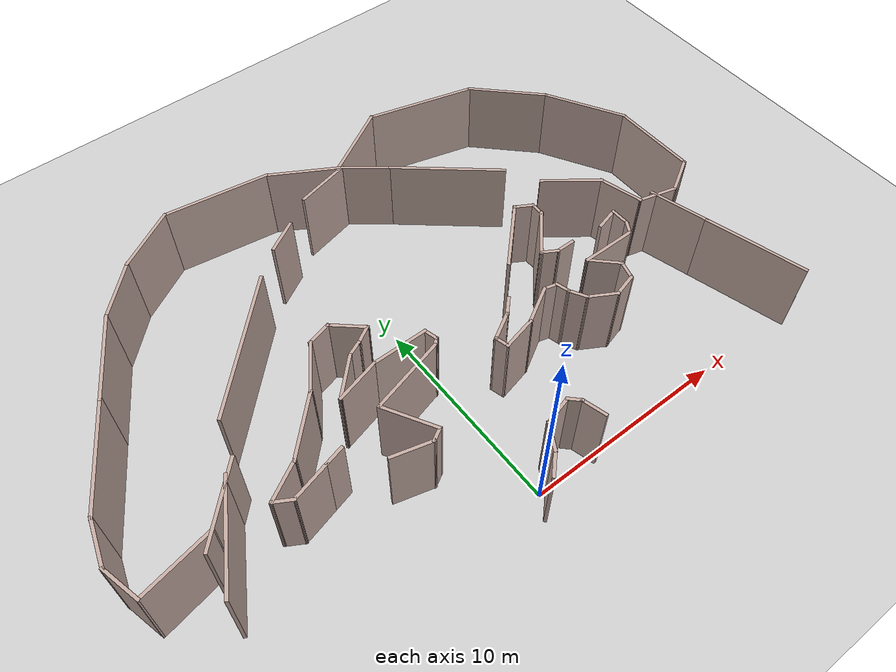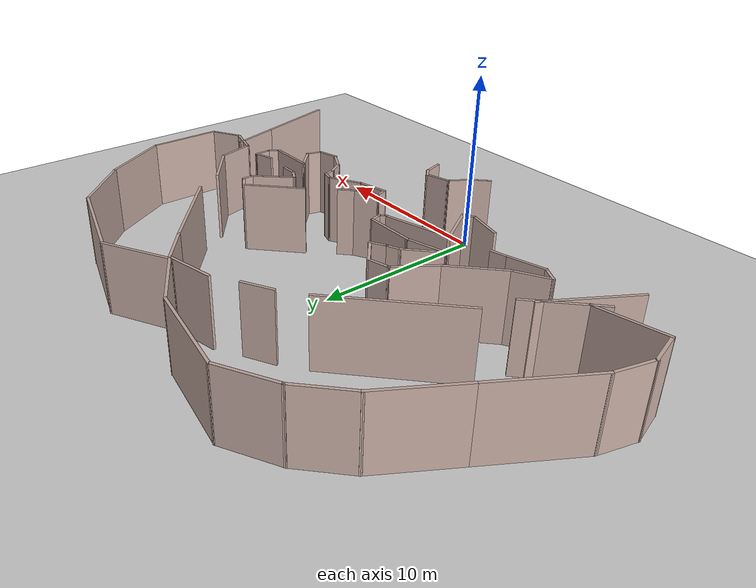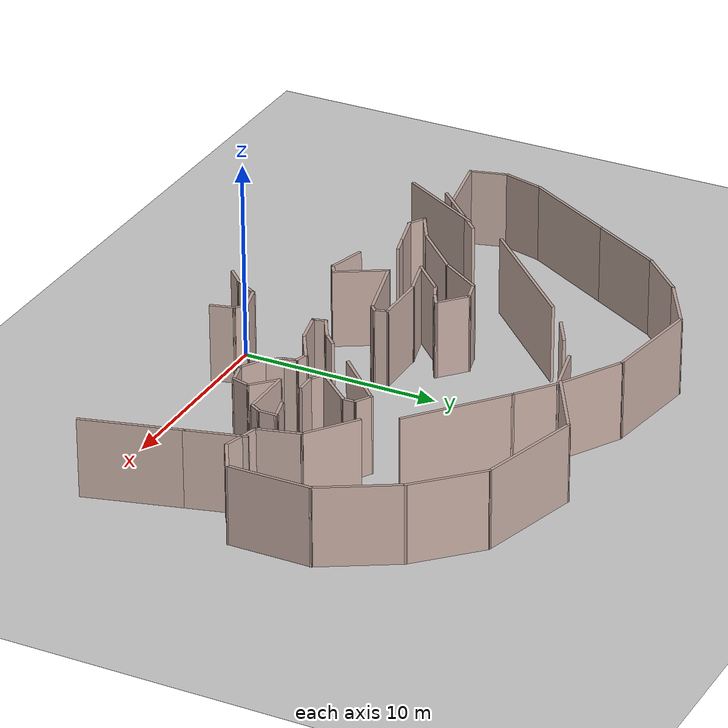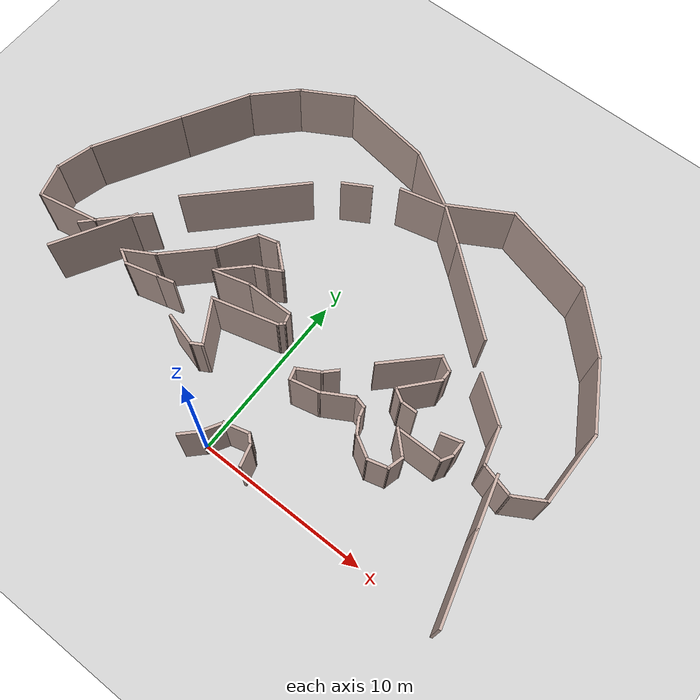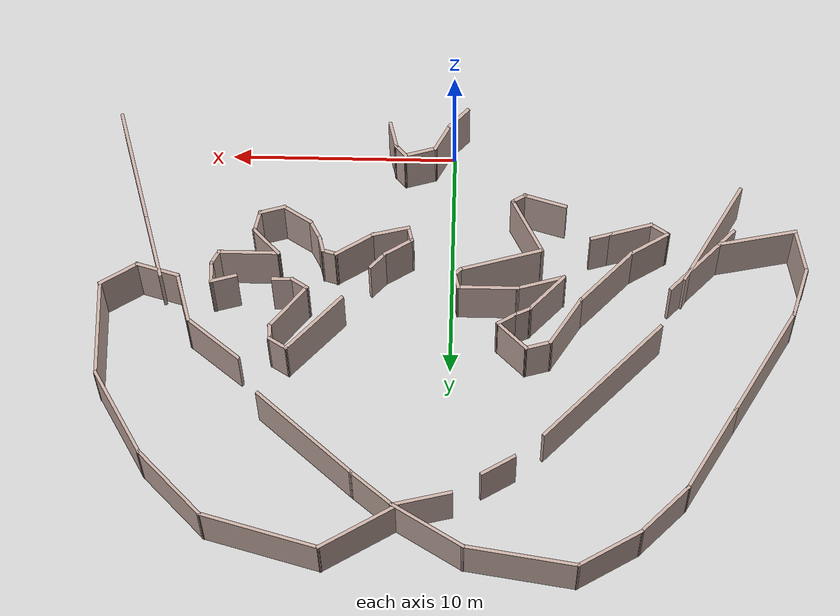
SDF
<sdf version="1.7">
 <world name="default">
  <model name="ground_plane">
   <static>1</static>
   <link name="link">
    <collision name="collision">
     <geometry><plane><normal>0 0 1</normal><size>100 100</size></plane></geometry>
     <surface><friction><ode><mu>100</mu><mu2>50</mu2></ode></friction></surface>
    </collision>
    <visual name="visual">
     <cast_shadows>0</cast_shadows>
     <geometry><plane><normal>0 0 1</normal><size>100 100</size></plane></geometry>
     <material>
      <script><uri>file://media/materials/scripts/gazebo.material</uri><name>Gazebo/Grey</name></script>
     </material>
    </visual>
   </link>
  </model>
  <model name="Untitled">
   <pose>-0.071284 -0.040454 0 0 -0 0</pose>
   <link name="Wall_104">
    <collision name="Wall_104_Collision">
     <geometry><box><size>5 0.15 4.0</size></box></geometry>
     <pose>0 0 2.0 0 -0 0</pose>
    </collision>
    <visual name="Wall_104_Visual">
     <pose>0 0 2.0 0 -0 0</pose>
     <geometry><box><size>5 0.15 4.0</size></box></geometry>
     <material>
      <script><uri>file://media/materials/scripts/gazebo.material</uri><name>Gazebo/Grey</name></script>
      <ambient>0.760784 0.662745 0.627451 1</ambient>
     </material>
     <meta><layer>0</layer></meta>
    </visual>
    <pose>14.2407 2.00719 0 0 -0 1.8326</pose>
   </link>
   <link name="Wall_105">
    <collision name="Wall_105_Collision">
     <geometry><box><size>3 0.15 4.0</size></box></geometry>
     <pose>0 0 2.0 0 -0 0</pose>
    </collision>
    <visual name="Wall_105_Visual">
     <pose>0 0 2.0 0 -0 0</pose>
     <geometry><box><size>3 0.15 4.0</size></box></geometry>
     <material>
      <script><uri>file://media/materials/scripts/gazebo.material</uri><name>Gazebo/Grey</name></script>
      <ambient>0.760784 0.662745 0.627451 1</ambient>
     </material>
     <meta><layer>0</layer></meta>
    </visual>
    <pose>13.2443 5.726 0 0 -0 1.8326</pose>
   </link>
   <link name="Wall_107">
    <collision name="Wall_107_Collision">
     <geometry><box><size>2.52892 0.15 4.0</size></box></geometry>
     <pose>0 0 2.0 0 -0 0</pose>
    </collision>
    <visual name="Wall_107_Visual">
     <pose>0 0 2.0 0 -0 0</pose>
     <geometry><box><size>2.52892 0.15 4.0</size></box></geometry>
     <material>
      <script><uri>file://media/materials/scripts/gazebo.material</uri><name>Gazebo/Grey</name></script>
      <ambient>0.760784 0.662745 0.627451 1</ambient>
     </material>
     <meta><layer>0</layer></meta>
    </visual>
    <pose>-4.96725 8.86569 0 0 -0 -2.15329</pose>
   </link>
   <link name="Wall_110">
    <collision name="Wall_110_Collision">
     <geometry><box><size>3.25 0.15 4.0</size></box></geometry>
     <pose>0 0 2.0 0 -0 0</pose>
    </collision>
    <visual name="Wall_110_Visual">
     <pose>0 0 2.0 0 -0 0</pose>
     <geometry><box><size>3.25 0.15 4.0</size></box></geometry>
     <material>
      <script><uri>file://media/materials/scripts/gazebo.material</uri><name>Gazebo/Grey</name></script>
      <ambient>0.760784 0.662745 0.627451 1</ambient>
     </material>
     <meta><layer>0</layer></meta>
    </visual>
    <pose>-6.7176 6.77637 0 0 -0 -2.35619</pose>
   </link>
   <link name="Wall_111">
    <collision name="Wall_111_Collision">
     <geometry><box><size>2 0.15 4.0</size></box></geometry>
     <pose>0 0 2.0 0 -0 0</pose>
    </collision>
    <visual name="Wall_111_Visual">
     <pose>0 0 2.0 0 -0 0</pose>
     <geometry><box><size>2 0.15 4.0</size></box></geometry>
     <material>
      <script><uri>file://media/materials/scripts/gazebo.material</uri><name>Gazebo/Grey</name></script>
      <ambient>0.760784 0.662745 0.627451 1</ambient>
     </material>
     <meta><layer>0</layer></meta>
    </visual>
    <pose>-8.61469 5.21785 0 0 -0 -2.61799</pose>
   </link>
   <link name="Wall_112">
    <collision name="Wall_112_Collision">
     <geometry><box><size>1 0.15 4.0</size></box></geometry>
     <pose>0 0 2.0 0 -0 0</pose>
    </collision>
    <visual name="Wall_112_Visual">
     <pose>0 0 2.0 0 -0 0</pose>
     <geometry><box><size>1 0.15 4.0</size></box></geometry>
     <material>
      <script><uri>file://media/materials/scripts/gazebo.material</uri><name>Gazebo/Grey</name></script>
      <ambient>0.760784 0.662745 0.627451 1</ambient>
     </material>
     <meta><layer>0</layer></meta>
    </visual>
    <pose>-9.0477 4.54285 0 0 -0 -0.523599</pose>
   </link>
   <link name="Wall_113">
    <collision name="Wall_113_Collision">
     <geometry><box><size>2 0.15 4.0</size></box></geometry>
     <pose>0 0 2.0 0 -0 0</pose>
    </collision>
    <visual name="Wall_113_Visual">
     <pose>0 0 2.0 0 -0 0</pose>
     <geometry><box><size>2 0.15 4.0</size></box></geometry>
     <material>
      <script><uri>file://media/materials/scripts/gazebo.material</uri><name>Gazebo/Grey</name></script>
      <ambient>0.760784 0.662745 0.627451 1</ambient>
     </material>
     <meta><layer>0</layer></meta>
    </visual>
    <pose>-7.78616 4.56976 0 0 -0 0.261799</pose>
   </link>
   <link name="Wall_114">
    <collision name="Wall_114_Collision">
     <geometry><box><size>1 0.15 4.0</size></box></geometry>
     <pose>0 0 2.0 0 -0 0</pose>
    </collision>
    <visual name="Wall_114_Visual">
     <pose>0 0 2.0 0 -0 0</pose>
     <geometry><box><size>1 0.15 4.0</size></box></geometry>
     <material>
      <script><uri>file://media/materials/scripts/gazebo.material</uri><name>Gazebo/Grey</name></script>
      <ambient>0.760784 0.662745 0.627451 1</ambient>
     </material>
     <meta><layer>0</layer></meta>
    </visual>
    <pose>-6.48216 4.91916 0 0 -0 0.261799</pose>
   </link>
   <link name="Wall_116">
    <collision name="Wall_116_Collision">
     <geometry><box><size>3.75 0.15 4.0</size></box></geometry>
     <pose>0 0 2.0 0 -0 0</pose>
    </collision>
    <visual name="Wall_116_Visual">
     <pose>0 0 2.0 0 -0 0</pose>
     <geometry><box><size>3.75 0.15 4.0</size></box></geometry>
     <material>
      <script><uri>file://media/materials/scripts/gazebo.material</uri><name>Gazebo/Grey</name></script>
      <ambient>0.760784 0.662745 0.627451 1</ambient>
     </material>
     <meta><layer>0</layer></meta>
    </visual>
    <pose>-2.06305 6.10326 0 0 -0 0.261799</pose>
   </link>
   <link name="Wall_117">
    <collision name="Wall_117_Collision">
     <geometry><box><size>0.5 0.15 4.0</size></box></geometry>
     <pose>0 0 2.0 0 -0 0</pose>
    </collision>
    <visual name="Wall_117_Visual">
     <pose>0 0 2.0 0 -0 0</pose>
     <geometry><box><size>0.5 0.15 4.0</size></box></geometry>
     <material>
      <script><uri>file://media/materials/scripts/gazebo.material</uri><name>Gazebo/Grey</name></script>
      <ambient>0.760784 0.662745 0.627451 1</ambient>
     </material>
     <meta><layer>0</layer></meta>
    </visual>
    <pose>-0.200637 6.69288 0 0 -0 0.785398</pose>
   </link>
   <link name="Wall_118">
    <collision name="Wall_118_Collision">
     <geometry><box><size>0.75 0.15 4.0</size></box></geometry>
     <pose>0 0 2.0 0 -0 0</pose>
    </collision>
    <visual name="Wall_118_Visual">
     <pose>0 0 2.0 0 -0 0</pose>
     <geometry><box><size>0.75 0.15 4.0</size></box></geometry>
     <material>
      <script><uri>file://media/materials/scripts/gazebo.material</uri><name>Gazebo/Grey</name></script>
      <ambient>0.760784 0.662745 0.627451 1</ambient>
     </material>
     <meta><layer>0</layer></meta>
    </visual>
    <pose>-0.154539 7.1064 0 0 -0 1.8326</pose>
   </link>
   <link name="Wall_119">
    <collision name="Wall_119_Collision">
     <geometry><box><size>2.75 0.15 4.0</size></box></geometry>
     <pose>0 0 2.0 0 -0 0</pose>
    </collision>
    <visual name="Wall_119_Visual">
     <pose>0 0 2.0 0 -0 0</pose>
     <geometry><box><size>2.75 0.15 4.0</size></box></geometry>
     <material>
      <script><uri>file://media/materials/scripts/gazebo.material</uri><name>Gazebo/Grey</name></script>
      <ambient>0.760784 0.662745 0.627451 1</ambient>
     </material>
     <meta><layer>0</layer></meta>
    </visual>
    <pose>-1.53218 7.39618 0 0 -0 3.14159</pose>
   </link>
   <link name="Wall_120">
    <collision name="Wall_120_Collision">
     <geometry><box><size>2.25 0.15 4.0</size></box></geometry>
     <pose>0 0 2.0 0 -0 0</pose>
    </collision>
    <visual name="Wall_120_Visual">
     <pose>0 0 2.0 0 -0 0</pose>
     <geometry><box><size>2.25 0.15 4.0</size></box></geometry>
     <material>
      <script><uri>file://media/materials/scripts/gazebo.material</uri><name>Gazebo/Grey</name></script>
      <ambient>0.760784 0.662745 0.627451 1</ambient>
     </material>
     <meta><layer>0</layer></meta>
    </visual>
    <pose>-3.84641 7.12442 0 0 -0 -2.87979</pose>
   </link>
   <link name="Wall_121">
    <collision name="Wall_121_Collision">
     <geometry><box><size>2.25 0.15 4.0</size></box></geometry>
     <pose>0 0 2.0 0 -0 0</pose>
    </collision>
    <visual name="Wall_121_Visual">
     <pose>0 0 2.0 0 -0 0</pose>
     <geometry><box><size>2.25 0.15 4.0</size></box></geometry>
     <material>
      <script><uri>file://media/materials/scripts/gazebo.material</uri><name>Gazebo/Grey</name></script>
      <ambient>0.760784 0.662745 0.627451 1</ambient>
     </material>
     <meta><layer>0</layer></meta>
    </visual>
    <pose>-4.11817 7.59512 0 0 -0 0.785398</pose>
   </link>
   <link name="Wall_122">
    <collision name="Wall_122_Collision">
     <geometry><box><size>0.842842 0.15 4.0</size></box></geometry>
     <pose>0 0 2.0 0 -0 0</pose>
    </collision>
    <visual name="Wall_122_Visual">
     <pose>0 0 2.0 0 -0 0</pose>
     <geometry><box><size>0.842842 0.15 4.0</size></box></geometry>
     <material>
      <script><uri>file://media/materials/scripts/gazebo.material</uri><name>Gazebo/Grey</name></script>
      <ambient>0.760784 0.662745 0.627451 1</ambient>
     </material>
     <meta><layer>0</layer></meta>
    </visual>
    <pose>-3.05895 8.47785 0 0 -0 0.416862</pose>
   </link>
   <link name="Wall_123">
    <collision name="Wall_123_Collision">
     <geometry><box><size>1 0.15 4.0</size></box></geometry>
     <pose>0 0 2.0 0 -0 0</pose>
    </collision>
    <visual name="Wall_123_Visual">
     <pose>0 0 2.0 0 -0 0</pose>
     <geometry><box><size>1 0.15 4.0</size></box></geometry>
     <material>
      <script><uri>file://media/materials/scripts/gazebo.material</uri><name>Gazebo/Grey</name></script>
      <ambient>0.760784 0.662745 0.627451 1</ambient>
     </material>
     <meta><layer>0</layer></meta>
    </visual>
    <pose>-2.37413 8.83061 0 0 -0 0.523599</pose>
   </link>
   <link name="Wall_124">
    <collision name="Wall_124_Collision">
     <geometry><box><size>1.81122 0.15 4.0</size></box></geometry>
     <pose>0 0 2.0 0 -0 0</pose>
    </collision>
    <visual name="Wall_124_Visual">
     <pose>0 0 2.0 0 -0 0</pose>
     <geometry><box><size>1.81122 0.15 4.0</size></box></geometry>
     <material>
      <script><uri>file://media/materials/scripts/gazebo.material</uri><name>Gazebo/Grey</name></script>
      <ambient>0.760784 0.662745 0.627451 1</ambient>
     </material>
     <meta><layer>0</layer></meta>
    </visual>
    <pose>-2.62824 9.59341 0 0 -0 2.41741</pose>
   </link>
   <link name="Wall_125">
    <collision name="Wall_125_Collision">
     <geometry><box><size>1.25 0.15 4.0</size></box></geometry>
     <pose>0 0 2.0 0 -0 0</pose>
    </collision>
    <visual name="Wall_125_Visual">
     <pose>0 0 2.0 0 -0 0</pose>
     <geometry><box><size>1.25 0.15 4.0</size></box></geometry>
     <material>
      <script><uri>file://media/materials/scripts/gazebo.material</uri><name>Gazebo/Grey</name></script>
      <ambient>0.760784 0.662745 0.627451 1</ambient>
     </material>
     <meta><layer>0</layer></meta>
    </visual>
    <pose>-3.78166 10.0014 0 0 -0 -2.87979</pose>
   </link>
   <link name="Wall_127">
    <collision name="Wall_127_Collision">
     <geometry><box><size>1 0.15 4.0</size></box></geometry>
     <pose>0 0 2.0 0 -0 0</pose>
    </collision>
    <visual name="Wall_127_Visual">
     <pose>0 0 2.0 0 -0 0</pose>
     <geometry><box><size>1 0.15 4.0</size></box></geometry>
     <material>
      <script><uri>file://media/materials/scripts/gazebo.material</uri><name>Gazebo/Grey</name></script>
      <ambient>0.760784 0.662745 0.627451 1</ambient>
     </material>
     <meta><layer>0</layer></meta>
    </visual>
    <pose>7.60765 10.1462 0 0 -0 -0.523599</pose>
   </link>
   <link name="Wall_128">
    <collision name="Wall_128_Collision">
     <geometry><box><size>0.75 0.15 4.0</size></box></geometry>
     <pose>0 0 2.0 0 -0 0</pose>
    </collision>
    <visual name="Wall_128_Visual">
     <pose>0 0 2.0 0 -0 0</pose>
     <geometry><box><size>0.75 0.15 4.0</size></box></geometry>
     <material>
      <script><uri>file://media/materials/scripts/gazebo.material</uri><name>Gazebo/Grey</name></script>
      <ambient>0.760784 0.662745 0.627451 1</ambient>
     </material>
     <meta><layer>0</layer></meta>
    </visual>
    <pose>7.97571 9.6337 0 0 -0 -1.5708</pose>
   </link>
   <link name="Wall_129">
    <collision name="Wall_129_Collision">
     <geometry><box><size>2.50487 0.15 4.0</size></box></geometry>
     <pose>0 0 2.0 0 -0 0</pose>
    </collision>
    <visual name="Wall_129_Visual">
     <pose>0 0 2.0 0 -0 0</pose>
     <geometry><box><size>2.50487 0.15 4.0</size></box></geometry>
     <material>
      <script><uri>file://media/materials/scripts/gazebo.material</uri><name>Gazebo/Grey</name></script>
      <ambient>0.760784 0.662745 0.627451 1</ambient>
     </material>
     <meta><layer>0</layer></meta>
    </visual>
    <pose>7.19836 8.44935 0 0 -0 -2.29189</pose>
   </link>
   <link name="Wall_132">
    <collision name="Wall_132_Collision">
     <geometry><box><size>1.25 0.15 4.0</size></box></geometry>
     <pose>0 0 2.0 0 -0 0</pose>
    </collision>
    <visual name="Wall_132_Visual">
     <pose>0 0 2.0 0 -0 0</pose>
     <geometry><box><size>1.25 0.15 4.0</size></box></geometry>
     <material>
      <script><uri>file://media/materials/scripts/gazebo.material</uri><name>Gazebo/Grey</name></script>
      <ambient>0.760784 0.662745 0.627451 1</ambient>
     </material>
     <meta><layer>0</layer></meta>
    </visual>
    <pose>10.0942 7.21331 0 0 -0 0.261799</pose>
   </link>
   <link name="Wall_133">
    <collision name="Wall_133_Collision">
     <geometry><box><size>1 0.15 4.0</size></box></geometry>
     <pose>0 0 2.0 0 -0 0</pose>
    </collision>
    <visual name="Wall_133_Visual">
     <pose>0 0 2.0 0 -0 0</pose>
     <geometry><box><size>1 0.15 4.0</size></box></geometry>
     <material>
      <script><uri>file://media/materials/scripts/gazebo.material</uri><name>Gazebo/Grey</name></script>
      <ambient>0.760784 0.662745 0.627451 1</ambient>
     </material>
     <meta><layer>0</layer></meta>
    </visual>
    <pose>10.6255 6.93066 0 0 -0 -1.5708</pose>
   </link>
   <link name="Wall_134">
    <collision name="Wall_134_Collision">
     <geometry><box><size>0.75 0.15 4.0</size></box></geometry>
     <pose>0 0 2.0 0 -0 0</pose>
    </collision>
    <visual name="Wall_134_Visual">
     <pose>0 0 2.0 0 -0 0</pose>
     <geometry><box><size>0.75 0.15 4.0</size></box></geometry>
     <material>
      <script><uri>file://media/materials/scripts/gazebo.material</uri><name>Gazebo/Grey</name></script>
      <ambient>0.760784 0.662745 0.627451 1</ambient>
     </material>
     <meta><layer>0</layer></meta>
    </visual>
    <pose>10.4755 6.24585 0 0 -0 -2.0944</pose>
   </link>
   <link name="Wall_135">
    <collision name="Wall_135_Collision">
     <geometry><box><size>2.75 0.15 4.0</size></box></geometry>
     <pose>0 0 2.0 0 -0 0</pose>
    </collision>
    <visual name="Wall_135_Visual">
     <pose>0 0 2.0 0 -0 0</pose>
     <geometry><box><size>2.75 0.15 4.0</size></box></geometry>
     <material>
      <script><uri>file://media/materials/scripts/gazebo.material</uri><name>Gazebo/Grey</name></script>
      <ambient>0.760784 0.662745 0.627451 1</ambient>
     </material>
     <meta><layer>0</layer></meta>
    </visual>
    <pose>9.02549 5.98605 0 0 -0 3.14159</pose>
   </link>
   <link name="Wall_136">
    <collision name="Wall_136_Collision">
     <geometry><box><size>1.64817 0.15 4.0</size></box></geometry>
     <pose>0 0 2.0 0 -0 0</pose>
    </collision>
    <visual name="Wall_136_Visual">
     <pose>0 0 2.0 0 -0 0</pose>
     <geometry><box><size>1.64817 0.15 4.0</size></box></geometry>
     <material>
      <script><uri>file://media/materials/scripts/gazebo.material</uri><name>Gazebo/Grey</name></script>
      <ambient>0.760784 0.662745 0.627451 1</ambient>
     </material>
     <meta><layer>0</layer></meta>
    </visual>
    <pose>8.25981 5.46105 0 0 -0 -0.776594</pose>
   </link>
   <link name="Wall_137">
    <collision name="Wall_137_Collision">
     <geometry><box><size>1 0.15 4.0</size></box></geometry>
     <pose>0 0 2.0 0 -0 0</pose>
    </collision>
    <visual name="Wall_137_Visual">
     <pose>0 0 2.0 0 -0 0</pose>
     <geometry><box><size>1 0.15 4.0</size></box></geometry>
     <material>
      <script><uri>file://media/materials/scripts/gazebo.material</uri><name>Gazebo/Grey</name></script>
      <ambient>0.760784 0.662745 0.627451 1</ambient>
     </material>
     <meta><layer>0</layer></meta>
    </visual>
    <pose>8.68414 4.52553 0 0 -0 -1.8326</pose>
   </link>
   <link name="Wall_138">
    <collision name="Wall_138_Collision">
     <geometry><box><size>1.25 0.15 4.0</size></box></geometry>
     <pose>0 0 2.0 0 -0 0</pose>
    </collision>
    <visual name="Wall_138_Visual">
     <pose>0 0 2.0 0 -0 0</pose>
     <geometry><box><size>1.25 0.15 4.0</size></box></geometry>
     <material>
      <script><uri>file://media/materials/scripts/gazebo.material</uri><name>Gazebo/Grey</name></script>
      <ambient>0.760784 0.662745 0.627451 1</ambient>
     </material>
     <meta><layer>0</layer></meta>
    </visual>
    <pose>8.04288 3.97266 0 0 -0 -2.87979</pose>
   </link>
   <link name="Wall_139">
    <collision name="Wall_139_Collision">
     <geometry><box><size>1.5 0.15 4.0</size></box></geometry>
     <pose>0 0 2.0 0 -0 0</pose>
    </collision>
    <visual name="Wall_139_Visual">
     <pose>0 0 2.0 0 -0 0</pose>
     <geometry><box><size>1.5 0.15 4.0</size></box></geometry>
     <material>
      <script><uri>file://media/materials/scripts/gazebo.material</uri><name>Gazebo/Grey</name></script>
      <ambient>0.760784 0.662745 0.627451 1</ambient>
     </material>
     <meta><layer>0</layer></meta>
    </visual>
    <pose>6.92706 4.16781 0 0 -0 2.61799</pose>
   </link>
   <link name="Wall_140">
    <collision name="Wall_140_Collision">
     <geometry><box><size>1 0.15 4.0</size></box></geometry>
     <pose>0 0 2.0 0 -0 0</pose>
    </collision>
    <visual name="Wall_140_Visual">
     <pose>0 0 2.0 0 -0 0</pose>
     <geometry><box><size>1 0.15 4.0</size></box></geometry>
     <material>
      <script><uri>file://media/materials/scripts/gazebo.material</uri><name>Gazebo/Grey</name></script>
      <ambient>0.760784 0.662745 0.627451 1</ambient>
     </material>
     <meta><layer>0</layer></meta>
    </visual>
    <pose>6.12999 4.87337 0 0 -0 2.0944</pose>
   </link>
   <link name="Wall_141">
    <collision name="Wall_141_Collision">
     <geometry><box><size>0.75 0.15 4.0</size></box></geometry>
     <pose>0 0 2.0 0 -0 0</pose>
    </collision>
    <visual name="Wall_141_Visual">
     <pose>0 0 2.0 0 -0 0</pose>
     <geometry><box><size>0.75 0.15 4.0</size></box></geometry>
     <material>
      <script><uri>file://media/materials/scripts/gazebo.material</uri><name>Gazebo/Grey</name></script>
      <ambient>0.760784 0.662745 0.627451 1</ambient>
     </material>
     <meta><layer>0</layer></meta>
    </visual>
    <pose>5.83985 5.53121 0 0 -0 1.8326</pose>
   </link>
   <link name="Wall_142">
    <collision name="Wall_142_Collision">
     <geometry><box><size>0.75 0.15 4.0</size></box></geometry>
     <pose>0 0 2.0 0 -0 0</pose>
    </collision>
    <visual name="Wall_142_Visual">
     <pose>0 0 2.0 0 -0 0</pose>
     <geometry><box><size>0.75 0.15 4.0</size></box></geometry>
     <material>
      <script><uri>file://media/materials/scripts/gazebo.material</uri><name>Gazebo/Grey</name></script>
      <ambient>0.760784 0.662745 0.627451 1</ambient>
     </material>
     <meta><layer>0</layer></meta>
    </visual>
    <pose>5.47242 5.89863 0 0 -0 2.87979</pose>
   </link>
   <link name="Wall_143">
    <collision name="Wall_143_Collision">
     <geometry><box><size>2 0.15 4.0</size></box></geometry>
     <pose>0 0 2.0 0 -0 0</pose>
    </collision>
    <visual name="Wall_143_Visual">
     <pose>0 0 2.0 0 -0 0</pose>
     <geometry><box><size>2 0.15 4.0</size></box></geometry>
     <material>
      <script><uri>file://media/materials/scripts/gazebo.material</uri><name>Gazebo/Grey</name></script>
      <ambient>0.760784 0.662745 0.627451 1</ambient>
     </material>
     <meta><layer>0</layer></meta>
    </visual>
    <pose>4.38157 5.51378 0 0 -0 -2.61799</pose>
   </link>
   <link name="Wall_144">
    <collision name="Wall_144_Collision">
     <geometry><box><size>1.75232 0.15 4.0</size></box></geometry>
     <pose>0 0 2.0 0 -0 0</pose>
    </collision>
    <visual name="Wall_144_Visual">
     <pose>0 0 2.0 0 -0 0</pose>
     <geometry><box><size>1.75232 0.15 4.0</size></box></geometry>
     <material>
      <script><uri>file://media/materials/scripts/gazebo.material</uri><name>Gazebo/Grey</name></script>
      <ambient>0.760784 0.662745 0.627451 1</ambient>
     </material>
     <meta><layer>0</layer></meta>
    </visual>
    <pose>2.80009 4.87013 0 0 -0 -2.91351</pose>
   </link>
   <link name="Wall_145">
    <collision name="Wall_145_Collision">
     <geometry><box><size>0.75 0.15 4.0</size></box></geometry>
     <pose>0 0 2.0 0 -0 0</pose>
    </collision>
    <visual name="Wall_145_Visual">
     <pose>0 0 2.0 0 -0 0</pose>
     <geometry><box><size>0.75 0.15 4.0</size></box></geometry>
     <material>
      <script><uri>file://media/materials/scripts/gazebo.material</uri><name>Gazebo/Grey</name></script>
      <ambient>0.760784 0.662745 0.627451 1</ambient>
     </material>
     <meta><layer>0</layer></meta>
    </visual>
    <pose>1.94203 4.97876 0 0 -0 1.8326</pose>
   </link>
   <link name="Wall_147">
    <collision name="Wall_147_Collision">
     <geometry><box><size>3.5 0.15 4.0</size></box></geometry>
     <pose>0 0 2.0 0 -0 0</pose>
    </collision>
    <visual name="Wall_147_Visual">
     <pose>0 0 2.0 0 -0 0</pose>
     <geometry><box><size>3.5 0.15 4.0</size></box></geometry>
     <material>
      <script><uri>file://media/materials/scripts/gazebo.material</uri><name>Gazebo/Grey</name></script>
      <ambient>0.760784 0.662745 0.627451 1</ambient>
     </material>
     <meta><layer>0</layer></meta>
    </visual>
    <pose>6.05518 9.1743 0 0 -0 0.785398</pose>
   </link>
   <link name="Wall_158">
    <collision name="Wall_158_Collision">
     <geometry><box><size>2 0.15 4.0</size></box></geometry>
     <pose>0 0 2.0 0 -0 0</pose>
    </collision>
    <visual name="Wall_158_Visual">
     <pose>0 0 2.0 0 -0 0</pose>
     <geometry><box><size>2 0.15 4.0</size></box></geometry>
     <material>
      <script><uri>file://media/materials/scripts/gazebo.material</uri><name>Gazebo/Grey</name></script>
      <ambient>0.760784 0.662745 0.627451 1</ambient>
     </material>
     <meta><layer>0</layer></meta>
    </visual>
    <pose>-3.98469 3.31005 0 0 -0 -0.261799</pose>
   </link>
   <link name="Wall_159">
    <collision name="Wall_159_Collision">
     <geometry><box><size>0.75 0.15 4.0</size></box></geometry>
     <pose>0 0 2.0 0 -0 0</pose>
    </collision>
    <visual name="Wall_159_Visual">
     <pose>0 0 2.0 0 -0 0</pose>
     <geometry><box><size>0.75 0.15 4.0</size></box></geometry>
     <material>
      <script><uri>file://media/materials/scripts/gazebo.material</uri><name>Gazebo/Grey</name></script>
      <ambient>0.760784 0.662745 0.627451 1</ambient>
     </material>
     <meta><layer>0</layer></meta>
    </visual>
    <pose>-2.83141 3.22065 0 0 -0 0.523599</pose>
   </link>
   <link name="Wall_160">
    <collision name="Wall_160_Collision">
     <geometry><box><size>2.75 0.15 4.0</size></box></geometry>
     <pose>0 0 2.0 0 -0 0</pose>
    </collision>
    <visual name="Wall_160_Visual">
     <pose>0 0 2.0 0 -0 0</pose>
     <geometry><box><size>2.75 0.15 4.0</size></box></geometry>
     <material>
      <script><uri>file://media/materials/scripts/gazebo.material</uri><name>Gazebo/Grey</name></script>
      <ambient>0.760784 0.662745 0.627451 1</ambient>
     </material>
     <meta><layer>0</layer></meta>
    </visual>
    <pose>-3.2216 4.49648 0 0 -0 2.0944</pose>
   </link>
   <link name="Wall_166">
    <collision name="Wall_166_Collision">
     <geometry><box><size>1.25 0.15 4.0</size></box></geometry>
     <pose>0 0 2.0 0 -0 0</pose>
    </collision>
    <visual name="Wall_166_Visual">
     <pose>0 0 2.0 0 -0 0</pose>
     <geometry><box><size>1.25 0.15 4.0</size></box></geometry>
     <material>
      <script><uri>file://media/materials/scripts/gazebo.material</uri><name>Gazebo/Grey</name></script>
      <ambient>0.760784 0.662745 0.627451 1</ambient>
     </material>
     <meta><layer>0</layer></meta>
    </visual>
    <pose>-0.087721 -0.522776 0 0 -0 -2.35619</pose>
   </link>
   <link name="Wall_203">
    <collision name="Wall_203_Collision">
     <geometry><box><size>1.25 0.15 4.0</size></box></geometry>
     <pose>0 0 2.0 0 -0 0</pose>
    </collision>
    <visual name="Wall_203_Visual">
     <pose>0 0 2.0 0 -0 0</pose>
     <geometry><box><size>1.25 0.15 4.0</size></box></geometry>
     <material>
      <script><uri>file://media/materials/scripts/gazebo.material</uri><name>Gazebo/Grey</name></script>
      <ambient>0.760784 0.662745 0.627451 1</ambient>
     </material>
     <meta><layer>0</layer></meta>
    </visual>
    <pose>2.79244 0.335903 0 0 -0 1.8326</pose>
   </link>
   <link name="Wall_204">
    <collision name="Wall_204_Collision">
     <geometry><box><size>0.75 0.15 4.0</size></box></geometry>
     <pose>0 0 2.0 0 -0 0</pose>
    </collision>
    <visual name="Wall_204_Visual">
     <pose>0 0 2.0 0 -0 0</pose>
     <geometry><box><size>0.75 0.15 4.0</size></box></geometry>
     <material>
      <script><uri>file://media/materials/scripts/gazebo.material</uri><name>Gazebo/Grey</name></script>
      <ambient>0.760784 0.662745 0.627451 1</ambient>
     </material>
     <meta><layer>0</layer></meta>
    </visual>
    <pose>2.43796 1.07929 0 0 -0 2.35619</pose>
   </link>
   <link name="Wall_205">
    <collision name="Wall_205_Collision">
     <geometry><box><size>1.5 0.15 4.0</size></box></geometry>
     <pose>0 0 2.0 0 -0 0</pose>
    </collision>
    <visual name="Wall_205_Visual">
     <pose>0 0 2.0 0 -0 0</pose>
     <geometry><box><size>1.5 0.15 4.0</size></box></geometry>
     <material>
      <script><uri>file://media/materials/scripts/gazebo.material</uri><name>Gazebo/Grey</name></script>
      <ambient>0.760784 0.662745 0.627451 1</ambient>
     </material>
     <meta><layer>0</layer></meta>
    </visual>
    <pose>1.57383 1.11672 0 0 -0 -2.87979</pose>
   </link>
   <link name="Wall_206">
    <collision name="Wall_206_Collision">
     <geometry><box><size>1.39207 0.15 4.0</size></box></geometry>
     <pose>0 0 2.0 0 -0 0</pose>
    </collision>
    <visual name="Wall_206_Visual">
     <pose>0 0 2.0 0 -0 0</pose>
     <geometry><box><size>1.39207 0.15 4.0</size></box></geometry>
     <material>
      <script><uri>file://media/materials/scripts/gazebo.material</uri><name>Gazebo/Grey</name></script>
      <ambient>0.760784 0.662745 0.627451 1</ambient>
     </material>
     <meta><layer>0</layer></meta>
    </visual>
    <pose>0.611508 0.404076 0 0 -0 -2.09403</pose>
   </link>
   <link name="Wall_254">
    <collision name="Wall_254_Collision">
     <geometry><box><size>1.75 0.15 4.0</size></box></geometry>
     <pose>0 0 2.0 0 -0 0</pose>
    </collision>
    <visual name="Wall_254_Visual">
     <pose>0 0 2.0 0 -0 0</pose>
     <geometry><box><size>1.75 0.15 4.0</size></box></geometry>
     <material>
      <script><uri>file://media/materials/scripts/gazebo.material</uri><name>Gazebo/Grey</name></script>
      <ambient>0.760784 0.662745 0.627451 1</ambient>
     </material>
     <meta><layer>0</layer></meta>
    </visual>
    <pose>-2.1228 15.4738 0 0 -0 -2.61799</pose>
   </link>
   <link name="Wall_258">
    <collision name="Wall_258_Collision">
     <geometry><box><size>1.5 0.15 4.0</size></box></geometry>
     <pose>0 0 2.0 0 -0 0</pose>
    </collision>
    <visual name="Wall_258_Visual">
     <pose>0 0 2.0 0 -0 0</pose>
     <geometry><box><size>1.5 0.15 4.0</size></box></geometry>
     <material>
      <script><uri>file://media/materials/scripts/gazebo.material</uri><name>Gazebo/Grey</name></script>
      <ambient>0.760784 0.662745 0.627451 1</ambient>
     </material>
     <meta><layer>0</layer></meta>
    </visual>
    <pose>2.44895 5.60604 0 0 -0 0.523599</pose>
   </link>
   <link name="Wall_259">
    <collision name="Wall_259_Collision">
     <geometry><box><size>1 0.15 4.0</size></box></geometry>
     <pose>0 0 2.0 0 -0 0</pose>
    </collision>
    <visual name="Wall_259_Visual">
     <pose>0 0 2.0 0 -0 0</pose>
     <geometry><box><size>1 0.15 4.0</size></box></geometry>
     <material>
      <script><uri>file://media/materials/scripts/gazebo.material</uri><name>Gazebo/Grey</name></script>
      <ambient>0.760784 0.662745 0.627451 1</ambient>
     </material>
     <meta><layer>0</layer></meta>
    </visual>
    <pose>3.33404 6.24406 0 0 -0 0.785398</pose>
   </link>
   <link name="Wall_261">
    <collision name="Wall_261_Collision">
     <geometry><box><size>1 0.15 4.0</size></box></geometry>
     <pose>0 0 2.0 0 -0 0</pose>
    </collision>
    <visual name="Wall_261_Visual">
     <pose>0 0 2.0 0 -0 0</pose>
     <geometry><box><size>1 0.15 4.0</size></box></geometry>
     <material>
      <script><uri>file://media/materials/scripts/gazebo.material</uri><name>Gazebo/Grey</name></script>
      <ambient>0.760784 0.662745 0.627451 1</ambient>
     </material>
     <meta><layer>0</layer></meta>
    </visual>
    <pose>7.48506 7.18791 0 0 -0 0</pose>
   </link>
   <link name="Wall_263">
    <collision name="Wall_263_Collision">
     <geometry><box><size>0.892005 0.15 4.0</size></box></geometry>
     <pose>0 0 2.0 0 -0 0</pose>
    </collision>
    <visual name="Wall_263_Visual">
     <pose>0 0 2.0 0 -0 0</pose>
     <geometry><box><size>0.892005 0.15 4.0</size></box></geometry>
     <material>
      <script><uri>file://media/materials/scripts/gazebo.material</uri><name>Gazebo/Grey</name></script>
      <ambient>0.760784 0.662745 0.627451 1</ambient>
     </material>
     <meta><layer>0</layer></meta>
    </visual>
    <pose>6.74054 7.37645 0 0 -0 -0.533094</pose>
   </link>
   <link name="Wall_59">
    <collision name="Wall_59_Collision">
     <geometry><box><size>5.18761 0.15 4.0</size></box></geometry>
     <pose>0 0 2.0 0 -0 0</pose>
    </collision>
    <visual name="Wall_59_Visual">
     <pose>0 0 2.0 0 -0 0</pose>
     <geometry><box><size>5.18761 0.15 4.0</size></box></geometry>
     <material>
      <script><uri>file://media/materials/scripts/gazebo.material</uri><name>Gazebo/Grey</name></script>
      <ambient>0.760784 0.662745 0.627451 1</ambient>
     </material>
     <meta><layer>0</layer></meta>
    </visual>
    <pose>-3.1685 19.4979 0 0 -0 2.99565</pose>
   </link>
   <link name="Wall_60">
    <collision name="Wall_60_Collision">
     <geometry><box><size>3.25 0.15 4.0</size></box></geometry>
     <pose>0 0 2.0 0 -0 0</pose>
    </collision>
    <visual name="Wall_60_Visual">
     <pose>0 0 2.0 0 -0 0</pose>
     <geometry><box><size>3.25 0.15 4.0</size></box></geometry>
     <material>
      <script><uri>file://media/materials/scripts/gazebo.material</uri><name>Gazebo/Grey</name></script>
      <ambient>0.760784 0.662745 0.627451 1</ambient>
     </material>
     <meta><layer>0</layer></meta>
    </visual>
    <pose>-7.00287 19.0892 0 0 -0 -2.61799</pose>
   </link>
   <link name="Wall_61">
    <collision name="Wall_61_Collision">
     <geometry><box><size>3 0.15 4.0</size></box></geometry>
     <pose>0 0 2.0 0 -0 0</pose>
    </collision>
    <visual name="Wall_61_Visual">
     <pose>0 0 2.0 0 -0 0</pose>
     <geometry><box><size>3 0.15 4.0</size></box></geometry>
     <material>
      <script><uri>file://media/materials/scripts/gazebo.material</uri><name>Gazebo/Grey</name></script>
      <ambient>0.760784 0.662745 0.627451 1</ambient>
     </material>
     <meta><layer>0</layer></meta>
    </visual>
    <pose>-9.35284 17.3066 0 0 -0 -2.35619</pose>
   </link>
   <link name="Wall_62">
    <collision name="Wall_62_Collision">
     <geometry><box><size>4.25 0.15 4.0</size></box></geometry>
     <pose>0 0 2.0 0 -0 0</pose>
    </collision>
    <visual name="Wall_62_Visual">
     <pose>0 0 2.0 0 -0 0</pose>
     <geometry><box><size>4.25 0.15 4.0</size></box></geometry>
     <material>
      <script><uri>file://media/materials/scripts/gazebo.material</uri><name>Gazebo/Grey</name></script>
      <ambient>0.760784 0.662745 0.627451 1</ambient>
     </material>
     <meta><layer>0</layer></meta>
    </visual>
    <pose>-11.3855 14.5236 0 0 -0 -2.0944</pose>
   </link>
   <link name="Wall_63">
    <collision name="Wall_63_Collision">
     <geometry><box><size>5.25 0.15 4.0</size></box></geometry>
     <pose>0 0 2.0 0 -0 0</pose>
    </collision>
    <visual name="Wall_63_Visual">
     <pose>0 0 2.0 0 -0 0</pose>
     <geometry><box><size>5.25 0.15 4.0</size></box></geometry>
     <material>
      <script><uri>file://media/materials/scripts/gazebo.material</uri><name>Gazebo/Grey</name></script>
      <ambient>0.760784 0.662745 0.627451 1</ambient>
     </material>
     <meta><layer>0</layer></meta>
    </visual>
    <pose>-13.6855 10.5399 0 0 -0 -2.0944</pose>
   </link>
   <link name="Wall_64">
    <collision name="Wall_64_Collision">
     <geometry><box><size>2.25 0.15 4.0</size></box></geometry>
     <pose>0 0 2.0 0 -0 0</pose>
    </collision>
    <visual name="Wall_64_Visual">
     <pose>0 0 2.0 0 -0 0</pose>
     <geometry><box><size>2.25 0.15 4.0</size></box></geometry>
     <material>
      <script><uri>file://media/materials/scripts/gazebo.material</uri><name>Gazebo/Grey</name></script>
      <ambient>0.760784 0.662745 0.627451 1</ambient>
     </material>
     <meta><layer>0</layer></meta>
    </visual>
    <pose>-15.2322 7.31727 0 0 -0 -1.8326</pose>
   </link>
   <link name="Wall_65">
    <collision name="Wall_65_Collision">
     <geometry><box><size>2 0.15 4.0</size></box></geometry>
     <pose>0 0 2.0 0 -0 0</pose>
    </collision>
    <visual name="Wall_65_Visual">
     <pose>0 0 2.0 0 -0 0</pose>
     <geometry><box><size>2 0.15 4.0</size></box></geometry>
     <material>
      <script><uri>file://media/materials/scripts/gazebo.material</uri><name>Gazebo/Grey</name></script>
      <ambient>0.760784 0.662745 0.627451 1</ambient>
     </material>
     <meta><layer>0</layer></meta>
    </visual>
    <pose>-15.2646 5.40957 0 0 -0 -1.309</pose>
   </link>
   <link name="Wall_66">
    <collision name="Wall_66_Collision">
     <geometry><box><size>3.54532 0.15 4.0</size></box></geometry>
     <pose>0 0 2.0 0 -0 0</pose>
    </collision>
    <visual name="Wall_66_Visual">
     <pose>0 0 2.0 0 -0 0</pose>
     <geometry><box><size>3.54532 0.15 4.0</size></box></geometry>
     <material>
      <script><uri>file://media/materials/scripts/gazebo.material</uri><name>Gazebo/Grey</name></script>
      <ambient>0.760784 0.662745 0.627451 1</ambient>
     </material>
     <meta><layer>0</layer></meta>
    </visual>
    <pose>-13.359 4.84157 0 0 -0 0.192918</pose>
   </link>
   <link name="Wall_67">
    <collision name="Wall_67_Collision">
     <geometry><box><size>4.0 0.15 4.0</size></box></geometry>
     <pose>0 0 2.0 0 -0 0</pose>
    </collision>
    <visual name="Wall_67_Visual">
     <pose>0 0 2.0 0 -0 0</pose>
     <geometry><box><size>4.0 0.15 4.0</size></box></geometry>
     <material>
      <script><uri>file://media/materials/scripts/gazebo.material</uri><name>Gazebo/Grey</name></script>
      <ambient>0.760784 0.662745 0.627451 1</ambient>
     </material>
     <meta><layer>0</layer></meta>
    </visual>
    <pose>-10.9434 5.91653 0 0 -0 0.785398</pose>
   </link>
   <link name="Wall_69">
    <collision name="Wall_69_Collision">
     <geometry><box><size>7.25 0.15 4.0</size></box></geometry>
     <pose>0 0 2.0 0 -0 0</pose>
    </collision>
    <visual name="Wall_69_Visual">
     <pose>0 0 2.0 0 -0 0</pose>
     <geometry><box><size>7.25 0.15 4.0</size></box></geometry>
     <material>
      <script><uri>file://media/materials/scripts/gazebo.material</uri><name>Gazebo/Grey</name></script>
      <ambient>0.760784 0.662745 0.627451 1</ambient>
     </material>
     <meta><layer>0</layer></meta>
    </visual>
    <pose>-6.61229 11.5455 0 0 -0 0.785398</pose>
   </link>
   <link name="Wall_71">
    <collision name="Wall_71_Collision">
     <geometry><box><size>2.678 0.15 4.0</size></box></geometry>
     <pose>0 0 2.0 0 -0 0</pose>
    </collision>
    <visual name="Wall_71_Visual">
     <pose>0 0 2.0 0 -0 0</pose>
     <geometry><box><size>2.678 0.15 4.0</size></box></geometry>
     <material>
      <script><uri>file://media/materials/scripts/gazebo.material</uri><name>Gazebo/Grey</name></script>
      <ambient>0.760784 0.662745 0.627451 1</ambient>
     </material>
     <meta><layer>0</layer></meta>
    </visual>
    <pose>1.12982 17.0405 0 0 -0 0.232385</pose>
   </link>
   <link name="Wall_72">
    <collision name="Wall_72_Collision">
     <geometry><box><size>3.75 0.15 4.0</size></box></geometry>
     <pose>0 0 2.0 0 -0 0</pose>
    </collision>
    <visual name="Wall_72_Visual">
     <pose>0 0 2.0 0 -0 0</pose>
     <geometry><box><size>3.75 0.15 4.0</size></box></geometry>
     <material>
      <script><uri>file://media/materials/scripts/gazebo.material</uri><name>Gazebo/Grey</name></script>
      <ambient>0.760784 0.662745 0.627451 1</ambient>
     </material>
     <meta><layer>0</layer></meta>
    </visual>
    <pose>0.882373 18.2316 0 0 -0 2.61799</pose>
   </link>
   <link name="Wall_75">
    <collision name="Wall_75_Collision">
     <geometry><box><size>4 0.15 4.0</size></box></geometry>
     <pose>0 0 2.0 0 -0 0</pose>
    </collision>
    <visual name="Wall_75_Visual">
     <pose>0 0 2.0 0 -0 0</pose>
     <geometry><box><size>4 0.15 4.0</size></box></geometry>
     <material>
      <script><uri>file://media/materials/scripts/gazebo.material</uri><name>Gazebo/Grey</name></script>
      <ambient>0.760784 0.662745 0.627451 1</ambient>
     </material>
     <meta><layer>0</layer></meta>
    </visual>
    <pose>3.88623 18.3468 0 0 -0 0.523599</pose>
   </link>
   <link name="Wall_76">
    <collision name="Wall_76_Collision">
     <geometry><box><size>5.5 0.15 4.0</size></box></geometry>
     <pose>0 0 2.0 0 -0 0</pose>
    </collision>
    <visual name="Wall_76_Visual">
     <pose>0 0 2.0 0 -0 0</pose>
     <geometry><box><size>5.5 0.15 4.0</size></box></geometry>
     <material>
      <script><uri>file://media/materials/scripts/gazebo.material</uri><name>Gazebo/Grey</name></script>
      <ambient>0.760784 0.662745 0.627451 1</ambient>
     </material>
     <meta><layer>0</layer></meta>
    </visual>
    <pose>8.13718 18.617 0 0 -0 -0.261799</pose>
   </link>
   <link name="Wall_77">
    <collision name="Wall_77_Collision">
     <geometry><box><size>4 0.15 4.0</size></box></geometry>
     <pose>0 0 2.0 0 -0 0</pose>
    </collision>
    <visual name="Wall_77_Visual">
     <pose>0 0 2.0 0 -0 0</pose>
     <geometry><box><size>4 0.15 4.0</size></box></geometry>
     <material>
      <script><uri>file://media/materials/scripts/gazebo.material</uri><name>Gazebo/Grey</name></script>
      <ambient>0.760784 0.662745 0.627451 1</ambient>
     </material>
     <meta><layer>0</layer></meta>
    </visual>
    <pose>12.0822 16.5635 0 0 -0 -0.785398</pose>
   </link>
   <link name="Wall_78">
    <collision name="Wall_78_Collision">
     <geometry><box><size>4.25 0.15 4.0</size></box></geometry>
     <pose>0 0 2.0 0 -0 0</pose>
    </collision>
    <visual name="Wall_78_Visual">
     <pose>0 0 2.0 0 -0 0</pose>
     <geometry><box><size>4.25 0.15 4.0</size></box></geometry>
     <material>
      <script><uri>file://media/materials/scripts/gazebo.material</uri><name>Gazebo/Grey</name></script>
      <ambient>0.760784 0.662745 0.627451 1</ambient>
     </material>
     <meta><layer>0</layer></meta>
    </visual>
    <pose>14.4684 13.4269 0 0 -0 -1.0472</pose>
   </link>
   <link name="Wall_79">
    <collision name="Wall_79_Collision">
     <geometry><box><size>4.25 0.15 4.0</size></box></geometry>
     <pose>0 0 2.0 0 -0 0</pose>
    </collision>
    <visual name="Wall_79_Visual">
     <pose>0 0 2.0 0 -0 0</pose>
     <geometry><box><size>4.25 0.15 4.0</size></box></geometry>
     <material>
      <script><uri>file://media/materials/scripts/gazebo.material</uri><name>Gazebo/Grey</name></script>
      <ambient>0.760784 0.662745 0.627451 1</ambient>
     </material>
     <meta><layer>0</layer></meta>
    </visual>
    <pose>15.4934 9.60158 0 0 -0 -1.5708</pose>
   </link>
   <link name="Wall_80">
    <collision name="Wall_80_Collision">
     <geometry><box><size>2 0.15 4.0</size></box></geometry>
     <pose>0 0 2.0 0 -0 0</pose>
    </collision>
    <visual name="Wall_80_Visual">
     <pose>0 0 2.0 0 -0 0</pose>
     <geometry><box><size>2 0.15 4.0</size></box></geometry>
     <material>
      <script><uri>file://media/materials/scripts/gazebo.material</uri><name>Gazebo/Grey</name></script>
      <ambient>0.760784 0.662745 0.627451 1</ambient>
     </material>
     <meta><layer>0</layer></meta>
    </visual>
    <pose>14.6923 7.08908 0 0 -0 -2.61799</pose>
   </link>
   <link name="Wall_81">
    <collision name="Wall_81_Collision">
     <geometry><box><size>2 0.15 4.0</size></box></geometry>
     <pose>0 0 2.0 0 -0 0</pose>
    </collision>
    <visual name="Wall_81_Visual">
     <pose>0 0 2.0 0 -0 0</pose>
     <geometry><box><size>2 0.15 4.0</size></box></geometry>
     <material>
      <script><uri>file://media/materials/scripts/gazebo.material</uri><name>Gazebo/Grey</name></script>
      <ambient>0.760784 0.662745 0.627451 1</ambient>
     </material>
     <meta><layer>0</layer></meta>
    </visual>
    <pose>12.9978 6.86599 0 0 -0 2.87979</pose>
   </link>
   <link name="Wall_82">
    <collision name="Wall_82_Collision">
     <geometry><box><size>2.25 0.15 4.0</size></box></geometry>
     <pose>0 0 2.0 0 -0 0</pose>
    </collision>
    <visual name="Wall_82_Visual">
     <pose>0 0 2.0 0 -0 0</pose>
     <geometry><box><size>2.25 0.15 4.0</size></box></geometry>
     <material>
      <script><uri>file://media/materials/scripts/gazebo.material</uri><name>Gazebo/Grey</name></script>
      <ambient>0.760784 0.662745 0.627451 1</ambient>
     </material>
     <meta><layer>0</layer></meta>
    </visual>
    <pose>11.8325 8.11962 0 0 -0 1.8326</pose>
   </link>
   <link name="Wall_83">
    <collision name="Wall_83_Collision">
     <geometry><box><size>2.96809 0.15 4.0</size></box></geometry>
     <pose>0 0 2.0 0 -0 0</pose>
    </collision>
    <visual name="Wall_83_Visual">
     <pose>0 0 2.0 0 -0 0</pose>
     <geometry><box><size>2.96809 0.15 4.0</size></box></geometry>
     <material>
      <script><uri>file://media/materials/scripts/gazebo.material</uri><name>Gazebo/Grey</name></script>
      <ambient>0.760784 0.662745 0.627451 1</ambient>
     </material>
     <meta><layer>0</layer></meta>
    </visual>
    <pose>10.4401 9.98792 0 0 -0 2.4904</pose>
   </link>
   <link name="Wall_85">
    <collision name="Wall_85_Collision">
     <geometry><box><size>5.58417 0.15 4.0</size></box></geometry>
     <pose>0 0 2.0 0 -0 0</pose>
    </collision>
    <visual name="Wall_85_Visual">
     <pose>0 0 2.0 0 -0 0</pose>
     <geometry><box><size>5.58417 0.15 4.0</size></box></geometry>
     <material>
      <script><uri>file://media/materials/scripts/gazebo.material</uri><name>Gazebo/Grey</name></script>
      <ambient>0.760784 0.662745 0.627451 1</ambient>
     </material>
     <meta><layer>0</layer></meta>
    </visual>
    <pose>6.31127 14.1886 0 0 -0 2.44442</pose>
   </link>
   <link name="Wall_86">
    <collision name="Wall_86_Collision">
     <geometry><box><size>2.41911 0.15 4.0</size></box></geometry>
     <pose>0 0 2.0 0 -0 0</pose>
    </collision>
    <visual name="Wall_86_Visual">
     <pose>0 0 2.0 0 -0 0</pose>
     <geometry><box><size>2.41911 0.15 4.0</size></box></geometry>
     <material>
      <script><uri>file://media/materials/scripts/gazebo.material</uri><name>Gazebo/Grey</name></script>
      <ambient>0.760784 0.662745 0.627451 1</ambient>
     </material>
     <meta><layer>0</layer></meta>
    </visual>
    <pose>3.3347 16.6324 0 0 -0 2.47757</pose>
   </link>
   <link name="Wall_89">
    <collision name="Wall_89_Collision">
     <geometry><box><size>5 0.15 4.0</size></box></geometry>
     <pose>0 0 2.0 0 -0 0</pose>
    </collision>
    <visual name="Wall_89_Visual">
     <pose>0 0 2.0 0 -0 0</pose>
     <geometry><box><size>5 0.15 4.0</size></box></geometry>
     <material>
      <script><uri>file://media/materials/scripts/gazebo.material</uri><name>Gazebo/Grey</name></script>
      <ambient>0.760784 0.662745 0.627451 1</ambient>
     </material>
     <meta><layer>0</layer></meta>
    </visual>
    <pose>-11.3892 4.69852 0 0 -0 -2.0944</pose>
   </link>
   <static>1</static>
  </model>
 </world>
</sdf>
